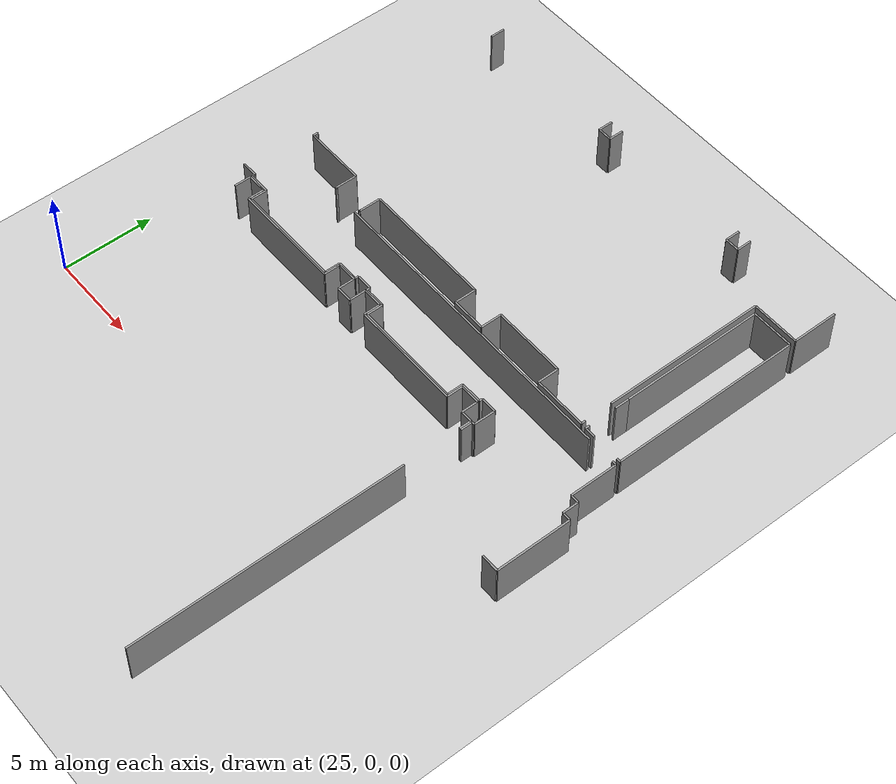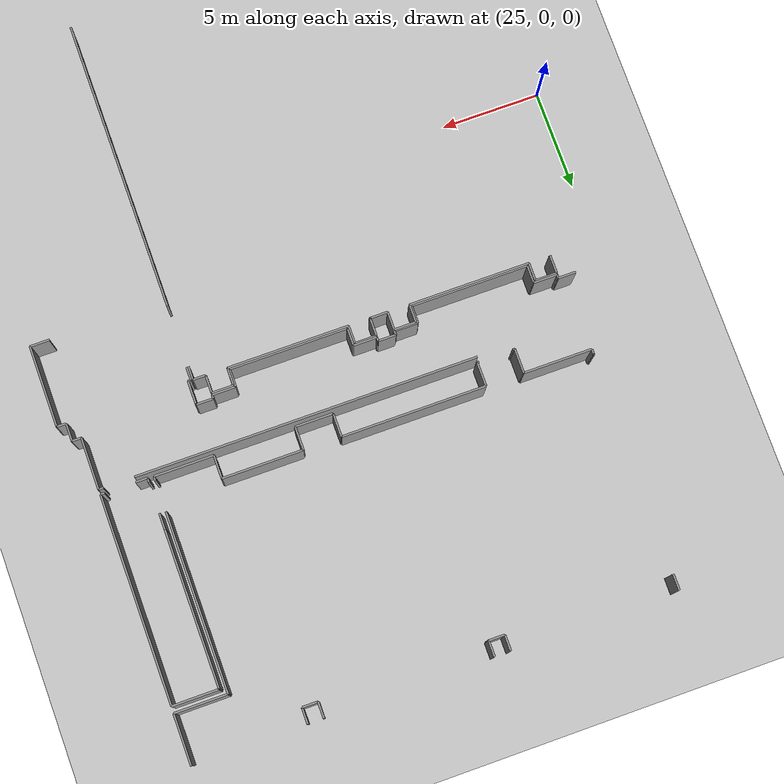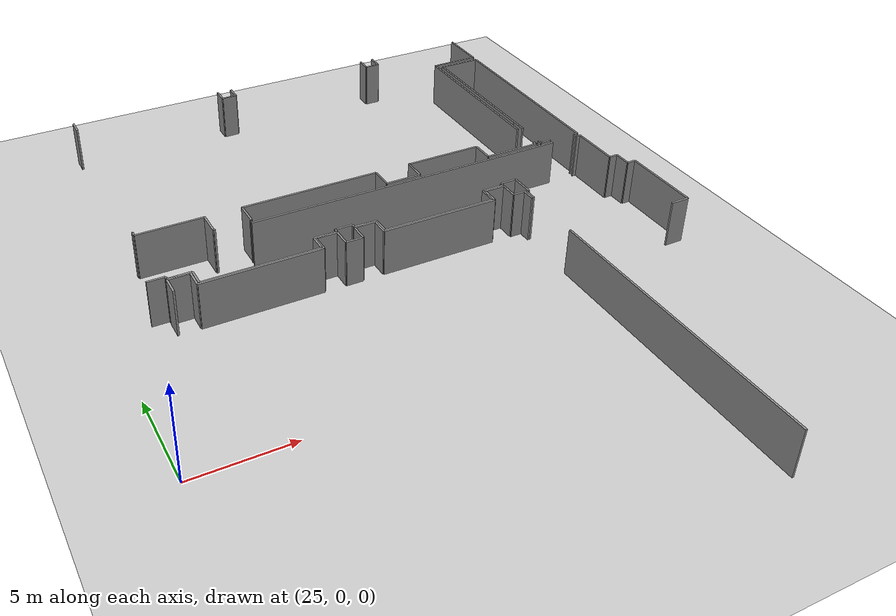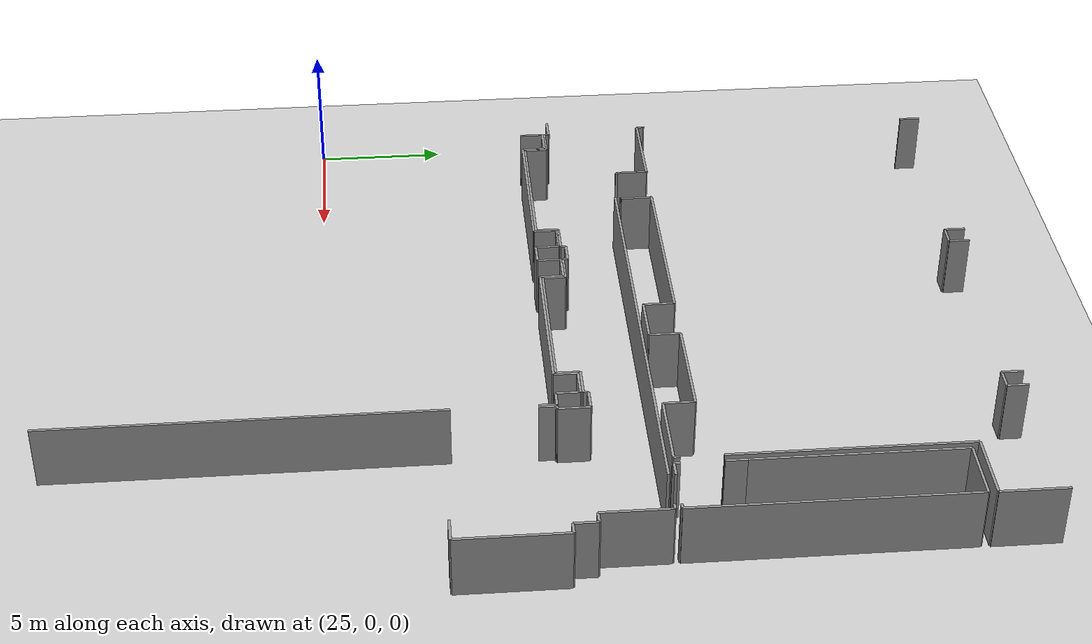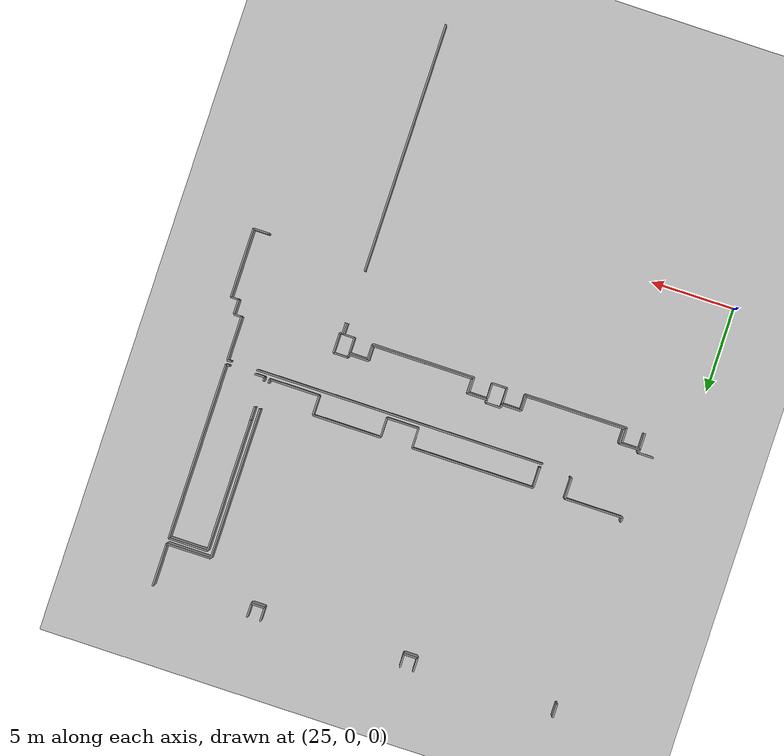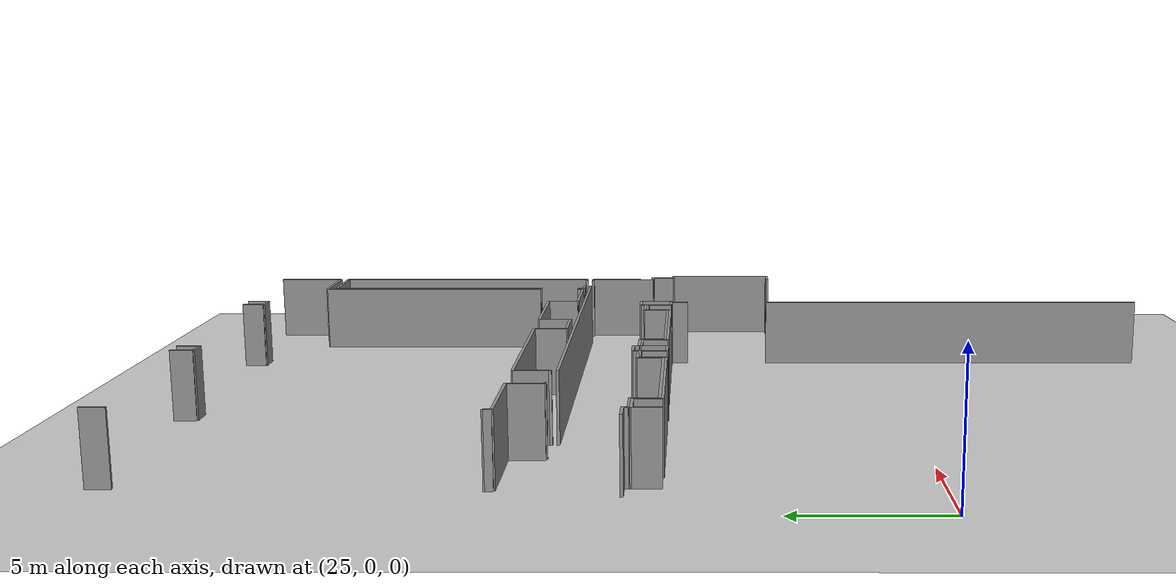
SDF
<sdf version="1.6">
 <world name="default">
  <model name="ground_plane">
   <static>1</static>
   <link name="link">
    <collision name="collision">
     <geometry><plane><normal>0 0 1</normal><size>100 100</size></plane></geometry>
     <surface><friction><ode><mu>100</mu><mu2>50</mu2></ode></friction></surface>
    </collision>
    <visual name="visual">
     <cast_shadows>0</cast_shadows>
     <geometry><plane><normal>0 0 1</normal><size>100 100</size></plane></geometry>
     <material>
      <script><uri>file://media/materials/scripts/gazebo.material</uri><name>Gazebo/Grey</name></script>
     </material>
    </visual>
   </link>
  </model>
  <model name="50045368">
   <static>1</static>
   <link name="Wall_276">
    <collision name="Wall_276_Collision">
     <geometry><box><size>0.822871664549 0.1 2.5</size></box></geometry>
     <pose>0.411435832274 0 1.25 0 0 0</pose>
    </collision>
    <visual name="Wall_276_Visual">
     <pose>0.411435832274 0 1.25 0 0 0</pose>
     <geometry><box><size>0.822871664549 0.1 2.5</size></box></geometry>
     <material>
      <script><uri>file://media/materials/scripts/gazebo.material</uri><name>Gazebo/Grey</name></script>
      <ambient>1 1 1 1</ambient>
     </material>
    </visual>
    <pose>80.4747141042 -0.826048284625 0 0 0 1.57079632679</pose>
   </link>
   <link name="Wall_277">
    <collision name="Wall_277_Collision">
     <geometry><box><size>0.810165184244 0.1 2.5</size></box></geometry>
     <pose>0.405082592122 0 1.25 0 0 0</pose>
    </collision>
    <visual name="Wall_277_Visual">
     <pose>0.405082592122 0 1.25 0 0 0</pose>
     <geometry><box><size>0.810165184244 0.1 2.5</size></box></geometry>
     <material>
      <script><uri>file://media/materials/scripts/gazebo.material</uri><name>Gazebo/Grey</name></script>
      <ambient>1 1 1 1</ambient>
     </material>
    </visual>
    <pose>88.9202033037 -0.00317662007624 0 0 0 -1.57079632679</pose>
   </link>
   <link name="Wall_278">
    <collision name="Wall_278_Collision">
     <geometry><box><size>0.806099110546 0.1 2.5</size></box></geometry>
     <pose>0.403049555273 0 1.25 0 0 0</pose>
    </collision>
    <visual name="Wall_278_Visual">
     <pose>0.403049555273 0 1.25 0 0 0</pose>
     <geometry><box><size>0.806099110546 0.1 2.5</size></box></geometry>
     <material>
      <script><uri>file://media/materials/scripts/gazebo.material</uri><name>Gazebo/Grey</name></script>
      <ambient>1 1 1 1</ambient>
     </material>
    </visual>
    <pose>88.9202033037 -0.81334180432 0 0 0 0.0</pose>
   </link>
   <link name="Wall_279">
    <collision name="Wall_279_Collision">
     <geometry><box><size>0.809783989835 0.1 2.5</size></box></geometry>
     <pose>0.404891994917 0 1.25 0 0 0</pose>
    </collision>
    <visual name="Wall_279_Visual">
     <pose>0.404891994917 0 1.25 0 0 0</pose>
     <geometry><box><size>0.809783989835 0.1 2.5</size></box></geometry>
     <material>
      <script><uri>file://media/materials/scripts/gazebo.material</uri><name>Gazebo/Grey</name></script>
      <ambient>1 1 1 1</ambient>
     </material>
    </visual>
    <pose>89.7263024142 -0.81334180432 0 0 0 1.57079632679</pose>
   </link>
   <link name="Wall_280">
    <collision name="Wall_280_Collision">
     <geometry><box><size>0.816899618806 0.1 2.5</size></box></geometry>
     <pose>0.408449809403 0 1.25 0 0 0</pose>
    </collision>
    <visual name="Wall_280_Visual">
     <pose>0.408449809403 0 1.25 0 0 0</pose>
     <geometry><box><size>0.816899618806 0.1 2.5</size></box></geometry>
     <material>
      <script><uri>file://media/materials/scripts/gazebo.material</uri><name>Gazebo/Grey</name></script>
      <ambient>1 1 1 1</ambient>
     </material>
    </visual>
    <pose>98.1796696315 -0.00355781448538 0 0 0 -1.57079632679</pose>
   </link>
   <link name="Wall_281">
    <collision name="Wall_281_Collision">
     <geometry><box><size>0.792249047014 0.1 2.5</size></box></geometry>
     <pose>0.396124523507 0 1.25 0 0 0</pose>
    </collision>
    <visual name="Wall_281_Visual">
     <pose>0.396124523507 0 1.25 0 0 0</pose>
     <geometry><box><size>0.792249047014 0.1 2.5</size></box></geometry>
     <material>
      <script><uri>file://media/materials/scripts/gazebo.material</uri><name>Gazebo/Grey</name></script>
      <ambient>1 1 1 1</ambient>
     </material>
    </visual>
    <pose>98.1796696315 -0.820457433291 0 0 0 0.0</pose>
   </link>
   <link name="Wall_282">
    <collision name="Wall_282_Collision">
     <geometry><box><size>0.814612452351 0.1 2.5</size></box></geometry>
     <pose>0.407306226175 0 1.25 0 0 0</pose>
    </collision>
    <visual name="Wall_282_Visual">
     <pose>0.407306226175 0 1.25 0 0 0</pose>
     <geometry><box><size>0.814612452351 0.1 2.5</size></box></geometry>
     <material>
      <script><uri>file://media/materials/scripts/gazebo.material</uri><name>Gazebo/Grey</name></script>
      <ambient>1 1 1 1</ambient>
     </material>
    </visual>
    <pose>98.9719186785 -0.820457433291 0 0 0 1.57079632679</pose>
   </link>
   <link name="Wall_283">
    <collision name="Wall_283_Collision">
     <geometry><box><size>2.54955527319 0.1 2.5</size></box></geometry>
     <pose>1.27477763659 0 1.25 0 0 0</pose>
    </collision>
    <visual name="Wall_283_Visual">
     <pose>1.27477763659 0 1.25 0 0 0</pose>
     <geometry><box><size>2.54955527319 0.1 2.5</size></box></geometry>
     <material>
      <script><uri>file://media/materials/scripts/gazebo.material</uri><name>Gazebo/Grey</name></script>
      <ambient>1 1 1 1</ambient>
     </material>
    </visual>
    <pose>104.685641677 -0.00584498094028 0 0 0 -1.57079632679</pose>
   </link>
   <link name="Wall_284">
    <collision name="Wall_284_Collision">
     <geometry><box><size>2.67280813215 0.1 2.5</size></box></geometry>
     <pose>1.33640406607 0 1.25 0 0 0</pose>
    </collision>
    <visual name="Wall_284_Visual">
     <pose>1.33640406607 0 1.25 0 0 0</pose>
     <geometry><box><size>2.67280813215 0.1 2.5</size></box></geometry>
     <material>
      <script><uri>file://media/materials/scripts/gazebo.material</uri><name>Gazebo/Grey</name></script>
      <ambient>1 1 1 1</ambient>
     </material>
    </visual>
    <pose>104.685641677 -2.55540025413 0 0 0 3.14159265359</pose>
   </link>
   <link name="Wall_285">
    <collision name="Wall_285_Collision">
     <geometry><box><size>9.04714104193 0.1 2.5</size></box></geometry>
     <pose>4.52357052097 0 1.25 0 0 0</pose>
    </collision>
    <visual name="Wall_285_Visual">
     <pose>4.52357052097 0 1.25 0 0 0</pose>
     <geometry><box><size>9.04714104193 0.1 2.5</size></box></geometry>
     <material>
      <script><uri>file://media/materials/scripts/gazebo.material</uri><name>Gazebo/Grey</name></script>
      <ambient>1 1 1 1</ambient>
     </material>
    </visual>
    <pose>102.012833545 -2.55540025413 0 0 0 -1.57079632679</pose>
   </link>
   <link name="Wall_286">
    <collision name="Wall_286_Collision">
     <geometry><box><size>0.228462515883 0.1 2.5</size></box></geometry>
     <pose>0.114231257942 0 1.25 0 0 0</pose>
    </collision>
    <visual name="Wall_286_Visual">
     <pose>0.114231257942 0 1.25 0 0 0</pose>
     <geometry><box><size>0.228462515883 0.1 2.5</size></box></geometry>
     <material>
      <script><uri>file://media/materials/scripts/gazebo.material</uri><name>Gazebo/Grey</name></script>
      <ambient>1 1 1 1</ambient>
     </material>
    </visual>
    <pose>102.012833545 -13.159974587 0 0 0 -1.57079632679</pose>
   </link>
   <link name="Wall_287">
    <collision name="Wall_287_Collision">
     <geometry><box><size>3.00317662008 0.1 2.5</size></box></geometry>
     <pose>1.50158831004 0 1.25 0 0 0</pose>
    </collision>
    <visual name="Wall_287_Visual">
     <pose>1.50158831004 0 1.25 0 0 0</pose>
     <geometry><box><size>3.00317662008 0.1 2.5</size></box></geometry>
     <material>
      <script><uri>file://media/materials/scripts/gazebo.material</uri><name>Gazebo/Grey</name></script>
      <ambient>1 1 1 1</ambient>
     </material>
    </visual>
    <pose>102.012833545 -13.3884371029 0 0 0 3.14159265359</pose>
   </link>
   <link name="Wall_288">
    <collision name="Wall_288_Collision">
     <geometry><box><size>1.17547649301 0.1 2.5</size></box></geometry>
     <pose>0.587738246506 0 1.25 0 0 0</pose>
    </collision>
    <visual name="Wall_288_Visual">
     <pose>0.587738246506 0 1.25 0 0 0</pose>
     <geometry><box><size>1.17547649301 0.1 2.5</size></box></geometry>
     <material>
      <script><uri>file://media/materials/scripts/gazebo.material</uri><name>Gazebo/Grey</name></script>
      <ambient>1 1 1 1</ambient>
     </material>
    </visual>
    <pose>99.009656925 -13.3884371029 0 0 0 1.57079632679</pose>
   </link>
   <link name="Wall_289">
    <collision name="Wall_289_Collision">
     <geometry><box><size>4.09529860229 0.1 2.5</size></box></geometry>
     <pose>2.04764930114 0 1.25 0 0 0</pose>
    </collision>
    <visual name="Wall_289_Visual">
     <pose>2.04764930114 0 1.25 0 0 0</pose>
     <geometry><box><size>4.09529860229 0.1 2.5</size></box></geometry>
     <material>
      <script><uri>file://media/materials/scripts/gazebo.material</uri><name>Gazebo/Grey</name></script>
      <ambient>1 1 1 1</ambient>
     </material>
    </visual>
    <pose>99.009656925 -12.2129606099 0 0 0 3.14159265359</pose>
   </link>
   <link name="Wall_290">
    <collision name="Wall_290_Collision">
     <geometry><box><size>1.18170266836 0.1 2.5</size></box></geometry>
     <pose>0.59085133418 0 1.25 0 0 0</pose>
    </collision>
    <visual name="Wall_290_Visual">
     <pose>0.59085133418 0 1.25 0 0 0</pose>
     <geometry><box><size>1.18170266836 0.1 2.5</size></box></geometry>
     <material>
      <script><uri>file://media/materials/scripts/gazebo.material</uri><name>Gazebo/Grey</name></script>
      <ambient>1 1 1 1</ambient>
     </material>
    </visual>
    <pose>94.9143583227 -12.2129606099 0 0 0 -1.57079632679</pose>
   </link>
   <link name="Wall_291">
    <collision name="Wall_291_Collision">
     <geometry><box><size>1.91562897078 0.1 2.5</size></box></geometry>
     <pose>0.957814485388 0 1.25 0 0 0</pose>
    </collision>
    <visual name="Wall_291_Visual">
     <pose>0.957814485388 0 1.25 0 0 0</pose>
     <geometry><box><size>1.91562897078 0.1 2.5</size></box></geometry>
     <material>
      <script><uri>file://media/materials/scripts/gazebo.material</uri><name>Gazebo/Grey</name></script>
      <ambient>1 1 1 1</ambient>
     </material>
    </visual>
    <pose>94.9143583227 -13.3946632783 0 0 0 3.14159265359</pose>
   </link>
   <link name="Wall_292">
    <collision name="Wall_292_Collision">
     <geometry><box><size>1.19212198221 0.1 2.5</size></box></geometry>
     <pose>0.596060991105 0 1.25 0 0 0</pose>
    </collision>
    <visual name="Wall_292_Visual">
     <pose>0.596060991105 0 1.25 0 0 0</pose>
     <geometry><box><size>1.19212198221 0.1 2.5</size></box></geometry>
     <material>
      <script><uri>file://media/materials/scripts/gazebo.material</uri><name>Gazebo/Grey</name></script>
      <ambient>1 1 1 1</ambient>
     </material>
    </visual>
    <pose>92.998729352 -13.3946632783 0 0 0 1.57079632679</pose>
   </link>
   <link name="Wall_293">
    <collision name="Wall_293_Collision">
     <geometry><box><size>7.33240152478 0.1 2.5</size></box></geometry>
     <pose>3.66620076239 0 1.25 0 0 0</pose>
    </collision>
    <visual name="Wall_293_Visual">
     <pose>3.66620076239 0 1.25 0 0 0</pose>
     <geometry><box><size>7.33240152478 0.1 2.5</size></box></geometry>
     <material>
      <script><uri>file://media/materials/scripts/gazebo.material</uri><name>Gazebo/Grey</name></script>
      <ambient>1 1 1 1</ambient>
     </material>
    </visual>
    <pose>92.998729352 -12.2025412961 0 0 0 3.14159265359</pose>
   </link>
   <link name="Wall_294">
    <collision name="Wall_294_Collision">
     <geometry><box><size>1.23036848793 0.1 2.5</size></box></geometry>
     <pose>0.615184243964 0 1.25 0 0 0</pose>
    </collision>
    <visual name="Wall_294_Visual">
     <pose>0.615184243964 0 1.25 0 0 0</pose>
     <geometry><box><size>1.23036848793 0.1 2.5</size></box></geometry>
     <material>
      <script><uri>file://media/materials/scripts/gazebo.material</uri><name>Gazebo/Grey</name></script>
      <ambient>1 1 1 1</ambient>
     </material>
    </visual>
    <pose>85.6663278272 -12.2025412961 0 0 0 -1.57079632679</pose>
   </link>
   <link name="Wall_295">
    <collision name="Wall_295_Collision">
     <geometry><box><size>0.0811944091487 0.1 2.5</size></box></geometry>
     <pose>0.0405972045743 0 1.25 0 0 0</pose>
    </collision>
    <visual name="Wall_295_Visual">
     <pose>0.0405972045743 0 1.25 0 0 0</pose>
     <geometry><box><size>0.0811944091487 0.1 2.5</size></box></geometry>
     <material>
      <script><uri>file://media/materials/scripts/gazebo.material</uri><name>Gazebo/Grey</name></script>
      <ambient>1 1 1 1</ambient>
     </material>
    </visual>
    <pose>85.6663278272 -13.432909784 0 0 0 3.14159265359</pose>
   </link>
   <link name="Wall_296">
    <collision name="Wall_296_Collision">
     <geometry><box><size>0.0955527318932 0.1 2.5</size></box></geometry>
     <pose>0.0477763659466 0 1.25 0 0 0</pose>
    </collision>
    <visual name="Wall_296_Visual">
     <pose>0.0477763659466 0 1.25 0 0 0</pose>
     <geometry><box><size>0.0955527318932 0.1 2.5</size></box></geometry>
     <material>
      <script><uri>file://media/materials/scripts/gazebo.material</uri><name>Gazebo/Grey</name></script>
      <ambient>1 1 1 1</ambient>
     </material>
    </visual>
    <pose>83.8401524778 -13.432909784 0 0 0 3.14159265359</pose>
   </link>
   <link name="Wall_297">
    <collision name="Wall_297_Collision">
     <geometry><box><size>1.24282083863 0.1 2.5</size></box></geometry>
     <pose>0.621410419314 0 1.25 0 0 0</pose>
    </collision>
    <visual name="Wall_297_Visual">
     <pose>0.621410419314 0 1.25 0 0 0</pose>
     <geometry><box><size>1.24282083863 0.1 2.5</size></box></geometry>
     <material>
      <script><uri>file://media/materials/scripts/gazebo.material</uri><name>Gazebo/Grey</name></script>
      <ambient>1 1 1 1</ambient>
     </material>
    </visual>
    <pose>83.7445997459 -13.432909784 0 0 0 1.57079632679</pose>
   </link>
   <link name="Wall_298">
    <collision name="Wall_298_Collision">
     <geometry><box><size>3.48284625159 0.1 2.5</size></box></geometry>
     <pose>1.74142312579 0 1.25 0 0 0</pose>
    </collision>
    <visual name="Wall_298_Visual">
     <pose>1.74142312579 0 1.25 0 0 0</pose>
     <geometry><box><size>3.48284625159 0.1 2.5</size></box></geometry>
     <material>
      <script><uri>file://media/materials/scripts/gazebo.material</uri><name>Gazebo/Grey</name></script>
      <ambient>1 1 1 1</ambient>
     </material>
    </visual>
    <pose>83.7445997459 -12.1900889454 0 0 0 3.14159265359</pose>
   </link>
   <link name="Wall_299">
    <collision name="Wall_299_Collision">
     <geometry><box><size>0.262134688691 0.1 2.5</size></box></geometry>
     <pose>0.131067344346 0 1.25 0 0 0</pose>
    </collision>
    <visual name="Wall_299_Visual">
     <pose>0.131067344346 0 1.25 0 0 0</pose>
     <geometry><box><size>0.262134688691 0.1 2.5</size></box></geometry>
     <material>
      <script><uri>file://media/materials/scripts/gazebo.material</uri><name>Gazebo/Grey</name></script>
      <ambient>1 1 1 1</ambient>
     </material>
    </visual>
    <pose>80.2617534943 -12.1900889454 0 0 0 1.57079632679</pose>
   </link>
   <link name="Wall_300">
    <collision name="Wall_300_Collision">
     <geometry><box><size>0.0360864040661 0.1 2.5</size></box></geometry>
     <pose>0.018043202033 0 1.25 0 0 0</pose>
    </collision>
    <visual name="Wall_300_Visual">
     <pose>0.018043202033 0 1.25 0 0 0</pose>
     <geometry><box><size>0.0360864040661 0.1 2.5</size></box></geometry>
     <material>
      <script><uri>file://media/materials/scripts/gazebo.material</uri><name>Gazebo/Grey</name></script>
      <ambient>1 1 1 1</ambient>
     </material>
    </visual>
    <pose>80.2617534943 -11.9279542567 0 0 0 3.14159265359</pose>
   </link>
   <link name="Wall_303">
    <collision name="Wall_303_Collision">
     <geometry><box><size>7.91728081321 0.1 2.5</size></box></geometry>
     <pose>3.95864040661 0 1.25 0 0 0</pose>
    </collision>
    <visual name="Wall_303_Visual">
     <pose>3.95864040661 0 1.25 0 0 0</pose>
     <geometry><box><size>7.91728081321 0.1 2.5</size></box></geometry>
     <material>
      <script><uri>file://media/materials/scripts/gazebo.material</uri><name>Gazebo/Grey</name></script>
      <ambient>1 1 1 1</ambient>
     </material>
    </visual>
    <pose>102.327445997 -10.8172808132 0 0 0 1.57079632679</pose>
   </link>
   <link name="Wall_304">
    <collision name="Wall_304_Collision">
     <geometry><box><size>2.34548919949 0.1 2.5</size></box></geometry>
     <pose>1.17274459975 0 1.25 0 0 0</pose>
    </collision>
    <visual name="Wall_304_Visual">
     <pose>1.17274459975 0 1.25 0 0 0</pose>
     <geometry><box><size>2.34548919949 0.1 2.5</size></box></geometry>
     <material>
      <script><uri>file://media/materials/scripts/gazebo.material</uri><name>Gazebo/Grey</name></script>
      <ambient>1 1 1 1</ambient>
     </material>
    </visual>
    <pose>102.327445997 -2.9 0 0 0 0.0</pose>
   </link>
   <link name="Wall_305">
    <collision name="Wall_305_Collision">
     <geometry><box><size>10.5179161372 0.1 2.5</size></box></geometry>
     <pose>5.25895806861 0 1.25 0 0 0</pose>
    </collision>
    <visual name="Wall_305_Visual">
     <pose>5.25895806861 0 1.25 0 0 0</pose>
     <geometry><box><size>10.5179161372 0.1 2.5</size></box></geometry>
     <material>
      <script><uri>file://media/materials/scripts/gazebo.material</uri><name>Gazebo/Grey</name></script>
      <ambient>1 1 1 1</ambient>
     </material>
    </visual>
    <pose>104.672935197 -2.9 0 0 0 -1.57079632679</pose>
   </link>
   <link name="Wall_306">
    <collision name="Wall_306_Collision">
     <geometry><box><size>0.210927573062 0.1 2.5</size></box></geometry>
     <pose>0.105463786531 0 1.25 0 0 0</pose>
    </collision>
    <visual name="Wall_306_Visual">
     <pose>0.105463786531 0 1.25 0 0 0</pose>
     <geometry><box><size>0.210927573062 0.1 2.5</size></box></geometry>
     <material>
      <script><uri>file://media/materials/scripts/gazebo.material</uri><name>Gazebo/Grey</name></script>
      <ambient>1 1 1 1</ambient>
     </material>
    </visual>
    <pose>104.672935197 -13.4179161372 0 0 0 3.14159265359</pose>
   </link>
   <link name="Wall_307">
    <collision name="Wall_307_Collision">
     <geometry><box><size>0.592757306226 0.1 2.5</size></box></geometry>
     <pose>0.296378653113 0 1.25 0 0 0</pose>
    </collision>
    <visual name="Wall_307_Visual">
     <pose>0.296378653113 0 1.25 0 0 0</pose>
     <geometry><box><size>0.592757306226 0.1 2.5</size></box></geometry>
     <material>
      <script><uri>file://media/materials/scripts/gazebo.material</uri><name>Gazebo/Grey</name></script>
      <ambient>1 1 1 1</ambient>
     </material>
    </visual>
    <pose>102.920711563 -13.4179161372 0 0 0 3.14159265359</pose>
   </link>
   <link name="Wall_308">
    <collision name="Wall_308_Collision">
     <geometry><box><size>0.233418043202 0.1 2.5</size></box></geometry>
     <pose>0.116709021601 0 1.25 0 0 0</pose>
    </collision>
    <visual name="Wall_308_Visual">
     <pose>0.116709021601 0 1.25 0 0 0</pose>
     <geometry><box><size>0.233418043202 0.1 2.5</size></box></geometry>
     <material>
      <script><uri>file://media/materials/scripts/gazebo.material</uri><name>Gazebo/Grey</name></script>
      <ambient>1 1 1 1</ambient>
     </material>
    </visual>
    <pose>102.327954257 -13.4179161372 0 0 0 1.57079632679</pose>
   </link>
   <link name="Wall_309">
    <collision name="Wall_309_Collision">
     <geometry><box><size>0.810038278895 0.1 2.5</size></box></geometry>
     <pose>0.405019139447 0 1.25 0 0 0</pose>
    </collision>
    <visual name="Wall_309_Visual">
     <pose>0.405019139447 0 1.25 0 0 0</pose>
     <geometry><box><size>0.810038278895 0.1 2.5</size></box></geometry>
     <material>
      <script><uri>file://media/materials/scripts/gazebo.material</uri><name>Gazebo/Grey</name></script>
      <ambient>1 1 1 1</ambient>
     </material>
    </visual>
    <pose>102.327954257 -11.6273189327 0 0 0 1.57142377769</pose>
   </link>
   <link name="Wall_319">
    <collision name="Wall_319_Collision">
     <geometry><box><size>17.323888183 0.1 2.5</size></box></geometry>
     <pose>8.66194409149 0 1.25 0 0 0</pose>
    </collision>
    <visual name="Wall_319_Visual">
     <pose>8.66194409149 0 1.25 0 0 0</pose>
     <geometry><box><size>17.323888183 0.1 2.5</size></box></geometry>
     <material>
      <script><uri>file://media/materials/scripts/gazebo.material</uri><name>Gazebo/Grey</name></script>
      <ambient>1 1 1 1</ambient>
     </material>
    </visual>
    <pose>85.5701397713 -13.6725540025 0 0 0 0.0</pose>
   </link>
   <link name="Wall_320">
    <collision name="Wall_320_Collision">
     <geometry><box><size>0.240152477764 0.1 2.5</size></box></geometry>
     <pose>0.120076238882 0 1.25 0 0 0</pose>
    </collision>
    <visual name="Wall_320_Visual">
     <pose>0.120076238882 0 1.25 0 0 0</pose>
     <geometry><box><size>0.240152477764 0.1 2.5</size></box></geometry>
     <material>
      <script><uri>file://media/materials/scripts/gazebo.material</uri><name>Gazebo/Grey</name></script>
      <ambient>1 1 1 1</ambient>
     </material>
    </visual>
    <pose>104.437865311 -13.6725540025 0 0 0 0.0</pose>
   </link>
   <link name="Wall_321">
    <collision name="Wall_321_Collision">
     <geometry><box><size>2.62350698856 0.1 2.5</size></box></geometry>
     <pose>1.31175349428 0 1.25 0 0 0</pose>
    </collision>
    <visual name="Wall_321_Visual">
     <pose>1.31175349428 0 1.25 0 0 0</pose>
     <geometry><box><size>2.62350698856 0.1 2.5</size></box></geometry>
     <material>
      <script><uri>file://media/materials/scripts/gazebo.material</uri><name>Gazebo/Grey</name></script>
      <ambient>1 1 1 1</ambient>
     </material>
    </visual>
    <pose>104.678017789 -13.6725540025 0 0 0 -1.57079632679</pose>
   </link>
   <link name="Wall_322">
    <collision name="Wall_322_Collision">
     <geometry><box><size>0.466327827192 0.1 2.5</size></box></geometry>
     <pose>0.233163913596 0 1.25 0 0 0</pose>
    </collision>
    <visual name="Wall_322_Visual">
     <pose>0.233163913596 0 1.25 0 0 0</pose>
     <geometry><box><size>0.466327827192 0.1 2.5</size></box></geometry>
     <material>
      <script><uri>file://media/materials/scripts/gazebo.material</uri><name>Gazebo/Grey</name></script>
      <ambient>1 1 1 1</ambient>
     </material>
    </visual>
    <pose>104.678017789 -16.2960609911 0 0 0 0.0</pose>
   </link>
   <link name="Wall_323">
    <collision name="Wall_323_Collision">
     <geometry><box><size>0.896188055909 0.1 2.5</size></box></geometry>
     <pose>0.448094027954 0 1.25 0 0 0</pose>
    </collision>
    <visual name="Wall_323_Visual">
     <pose>0.448094027954 0 1.25 0 0 0</pose>
     <geometry><box><size>0.896188055909 0.1 2.5</size></box></geometry>
     <material>
      <script><uri>file://media/materials/scripts/gazebo.material</uri><name>Gazebo/Grey</name></script>
      <ambient>1 1 1 1</ambient>
     </material>
    </visual>
    <pose>105.144345616 -16.2960609911 0 0 0 -1.57079632679</pose>
   </link>
   <link name="Wall_324">
    <collision name="Wall_324_Collision">
     <geometry><box><size>0.470139771283 0.1 2.5</size></box></geometry>
     <pose>0.235069885642 0 1.25 0 0 0</pose>
    </collision>
    <visual name="Wall_324_Visual">
     <pose>0.235069885642 0 1.25 0 0 0</pose>
     <geometry><box><size>0.470139771283 0.1 2.5</size></box></geometry>
     <material>
      <script><uri>file://media/materials/scripts/gazebo.material</uri><name>Gazebo/Grey</name></script>
      <ambient>1 1 1 1</ambient>
     </material>
    </visual>
    <pose>105.144345616 -17.192249047 0 0 0 0.0</pose>
   </link>
   <link name="Wall_325">
    <collision name="Wall_325_Collision">
     <geometry><box><size>4.13405336722 0.1 2.5</size></box></geometry>
     <pose>2.06702668361 0 1.25 0 0 0</pose>
    </collision>
    <visual name="Wall_325_Visual">
     <pose>2.06702668361 0 1.25 0 0 0</pose>
     <geometry><box><size>4.13405336722 0.1 2.5</size></box></geometry>
     <material>
      <script><uri>file://media/materials/scripts/gazebo.material</uri><name>Gazebo/Grey</name></script>
      <ambient>1 1 1 1</ambient>
     </material>
    </visual>
    <pose>105.614485388 -17.192249047 0 0 0 -1.57079632679</pose>
   </link>
   <link name="Wall_326">
    <collision name="Wall_326_Collision">
     <geometry><box><size>0.975857687421 0.1 2.5</size></box></geometry>
     <pose>0.48792884371 0 1.25 0 0 0</pose>
    </collision>
    <visual name="Wall_326_Visual">
     <pose>0.48792884371 0 1.25 0 0 0</pose>
     <geometry><box><size>0.975857687421 0.1 2.5</size></box></geometry>
     <material>
      <script><uri>file://media/materials/scripts/gazebo.material</uri><name>Gazebo/Grey</name></script>
      <ambient>1 1 1 1</ambient>
     </material>
    </visual>
    <pose>105.614485388 -21.3263024142 0 0 0 3.14159265359</pose>
   </link>
   <link name="Wall_337">
    <collision name="Wall_337_Collision">
     <geometry><box><size>0.661118170267 0.1 2.5</size></box></geometry>
     <pose>0.330559085133 0 1.25 0 0 0</pose>
    </collision>
    <visual name="Wall_337_Visual">
     <pose>0.330559085133 0 1.25 0 0 0</pose>
     <geometry><box><size>0.661118170267 0.1 2.5</size></box></geometry>
     <material>
      <script><uri>file://media/materials/scripts/gazebo.material</uri><name>Gazebo/Grey</name></script>
      <ambient>1 1 1 1</ambient>
     </material>
    </visual>
    <pose>98.8627700127 -17.8504447268 0 0 0 1.57079632679</pose>
   </link>
   <link name="Wall_338">
    <collision name="Wall_338_Collision">
     <geometry><box><size>0.150317662008 0.1 2.5</size></box></geometry>
     <pose>0.0751588310038 0 1.25 0 0 0</pose>
    </collision>
    <visual name="Wall_338_Visual">
     <pose>0.0751588310038 0 1.25 0 0 0</pose>
     <geometry><box><size>0.150317662008 0.1 2.5</size></box></geometry>
     <material>
      <script><uri>file://media/materials/scripts/gazebo.material</uri><name>Gazebo/Grey</name></script>
      <ambient>1 1 1 1</ambient>
     </material>
    </visual>
    <pose>98.8627700127 -17.1893265565 0 0 0 0.0</pose>
   </link>
   <link name="Wall_339">
    <collision name="Wall_339_Collision">
     <geometry><box><size>1.20152477764 0.1 2.5</size></box></geometry>
     <pose>0.600762388818 0 1.25 0 0 0</pose>
    </collision>
    <visual name="Wall_339_Visual">
     <pose>0.600762388818 0 1.25 0 0 0</pose>
     <geometry><box><size>1.20152477764 0.1 2.5</size></box></geometry>
     <material>
      <script><uri>file://media/materials/scripts/gazebo.material</uri><name>Gazebo/Grey</name></script>
      <ambient>1 1 1 1</ambient>
     </material>
    </visual>
    <pose>99.0130876747 -17.1893265565 0 0 0 1.57079632679</pose>
   </link>
   <link name="Wall_340">
    <collision name="Wall_340_Collision">
     <geometry><box><size>0.868487928844 0.1 2.5</size></box></geometry>
     <pose>0.434243964422 0 1.25 0 0 0</pose>
    </collision>
    <visual name="Wall_340_Visual">
     <pose>0.434243964422 0 1.25 0 0 0</pose>
     <geometry><box><size>0.868487928844 0.1 2.5</size></box></geometry>
     <material>
      <script><uri>file://media/materials/scripts/gazebo.material</uri><name>Gazebo/Grey</name></script>
      <ambient>1 1 1 1</ambient>
     </material>
    </visual>
    <pose>99.0130876747 -15.9878017789 0 0 0 3.14159265359</pose>
   </link>
   <link name="Wall_341">
    <collision name="Wall_341_Collision">
     <geometry><box><size>0.187801778907 0.1 2.5</size></box></geometry>
     <pose>0.0939008894536 0 1.25 0 0 0</pose>
    </collision>
    <visual name="Wall_341_Visual">
     <pose>0.0939008894536 0 1.25 0 0 0</pose>
     <geometry><box><size>0.187801778907 0.1 2.5</size></box></geometry>
     <material>
      <script><uri>file://media/materials/scripts/gazebo.material</uri><name>Gazebo/Grey</name></script>
      <ambient>1 1 1 1</ambient>
     </material>
    </visual>
    <pose>98.1445997459 -15.9878017789 0 0 0 -1.57079632679</pose>
   </link>
   <link name="Wall_342">
    <collision name="Wall_342_Collision">
     <geometry><box><size>1.19517153748 0.1 2.5</size></box></geometry>
     <pose>0.597585768742 0 1.25 0 0 0</pose>
    </collision>
    <visual name="Wall_342_Visual">
     <pose>0.597585768742 0 1.25 0 0 0</pose>
     <geometry><box><size>1.19517153748 0.1 2.5</size></box></geometry>
     <material>
      <script><uri>file://media/materials/scripts/gazebo.material</uri><name>Gazebo/Grey</name></script>
      <ambient>1 1 1 1</ambient>
     </material>
    </visual>
    <pose>98.1445997459 -16.1756035578 0 0 0 3.14159265359</pose>
   </link>
   <link name="Wall_343">
    <collision name="Wall_343_Collision">
     <geometry><box><size>0.903049555273 0.1 2.5</size></box></geometry>
     <pose>0.451524777637 0 1.25 0 0 0</pose>
    </collision>
    <visual name="Wall_343_Visual">
     <pose>0.451524777637 0 1.25 0 0 0</pose>
     <geometry><box><size>0.903049555273 0.1 2.5</size></box></geometry>
     <material>
      <script><uri>file://media/materials/scripts/gazebo.material</uri><name>Gazebo/Grey</name></script>
      <ambient>1 1 1 1</ambient>
     </material>
    </visual>
    <pose>96.9494282084 -16.1756035578 0 0 0 -1.57079632679</pose>
   </link>
   <link name="Wall_344">
    <collision name="Wall_344_Collision">
     <geometry><box><size>5.97725540025 0.1 2.5</size></box></geometry>
     <pose>2.98862770013 0 1.25 0 0 0</pose>
    </collision>
    <visual name="Wall_344_Visual">
     <pose>2.98862770013 0 1.25 0 0 0</pose>
     <geometry><box><size>5.97725540025 0.1 2.5</size></box></geometry>
     <material>
      <script><uri>file://media/materials/scripts/gazebo.material</uri><name>Gazebo/Grey</name></script>
      <ambient>1 1 1 1</ambient>
     </material>
    </visual>
    <pose>96.9494282084 -17.0786531131 0 0 0 3.14159265359</pose>
   </link>
   <link name="Wall_345">
    <collision name="Wall_345_Collision">
     <geometry><box><size>0.890470139771 0.1 2.5</size></box></geometry>
     <pose>0.445235069886 0 1.25 0 0 0</pose>
    </collision>
    <visual name="Wall_345_Visual">
     <pose>0.445235069886 0 1.25 0 0 0</pose>
     <geometry><box><size>0.890470139771 0.1 2.5</size></box></geometry>
     <material>
      <script><uri>file://media/materials/scripts/gazebo.material</uri><name>Gazebo/Grey</name></script>
      <ambient>1 1 1 1</ambient>
     </material>
    </visual>
    <pose>90.9721728081 -17.0786531131 0 0 0 1.57079632679</pose>
   </link>
   <link name="Wall_346">
    <collision name="Wall_346_Collision">
     <geometry><box><size>1.18792884371 0.1 2.5</size></box></geometry>
     <pose>0.593964421855 0 1.25 0 0 0</pose>
    </collision>
    <visual name="Wall_346_Visual">
     <pose>0.593964421855 0 1.25 0 0 0</pose>
     <geometry><box><size>1.18792884371 0.1 2.5</size></box></geometry>
     <material>
      <script><uri>file://media/materials/scripts/gazebo.material</uri><name>Gazebo/Grey</name></script>
      <ambient>1 1 1 1</ambient>
     </material>
    </visual>
    <pose>90.9721728081 -16.1881829733 0 0 0 3.14159265359</pose>
   </link>
   <link name="Wall_347">
    <collision name="Wall_347_Collision">
     <geometry><box><size>0.191105463787 0.1 2.5</size></box></geometry>
     <pose>0.0955527318933 0 1.25 0 0 0</pose>
    </collision>
    <visual name="Wall_347_Visual">
     <pose>0.0955527318933 0 1.25 0 0 0</pose>
     <geometry><box><size>0.191105463787 0.1 2.5</size></box></geometry>
     <material>
      <script><uri>file://media/materials/scripts/gazebo.material</uri><name>Gazebo/Grey</name></script>
      <ambient>1 1 1 1</ambient>
     </material>
    </visual>
    <pose>89.7842439644 -16.1881829733 0 0 0 1.57079632679</pose>
   </link>
   <link name="Wall_348">
    <collision name="Wall_348_Collision">
     <geometry><box><size>0.897331639136 0.1 2.5</size></box></geometry>
     <pose>0.448665819568 0 1.25 0 0 0</pose>
    </collision>
    <visual name="Wall_348_Visual">
     <pose>0.448665819568 0 1.25 0 0 0</pose>
     <geometry><box><size>0.897331639136 0.1 2.5</size></box></geometry>
     <material>
      <script><uri>file://media/materials/scripts/gazebo.material</uri><name>Gazebo/Grey</name></script>
      <ambient>1 1 1 1</ambient>
     </material>
    </visual>
    <pose>89.7842439644 -15.9970775095 0 0 0 3.14159265359</pose>
   </link>
   <link name="Wall_349">
    <collision name="Wall_349_Collision">
     <geometry><box><size>0.195171537484 0.1 2.5</size></box></geometry>
     <pose>0.0975857687421 0 1.25 0 0 0</pose>
    </collision>
    <visual name="Wall_349_Visual">
     <pose>0.0975857687421 0 1.25 0 0 0</pose>
     <geometry><box><size>0.195171537484 0.1 2.5</size></box></geometry>
     <material>
      <script><uri>file://media/materials/scripts/gazebo.material</uri><name>Gazebo/Grey</name></script>
      <ambient>1 1 1 1</ambient>
     </material>
    </visual>
    <pose>88.8869123253 -15.9970775095 0 0 0 -1.57079632679</pose>
   </link>
   <link name="Wall_350">
    <collision name="Wall_350_Collision">
     <geometry><box><size>1.19618805591 0.1 2.5</size></box></geometry>
     <pose>0.598094027954 0 1.25 0 0 0</pose>
    </collision>
    <visual name="Wall_350_Visual">
     <pose>0.598094027954 0 1.25 0 0 0</pose>
     <geometry><box><size>1.19618805591 0.1 2.5</size></box></geometry>
     <material>
      <script><uri>file://media/materials/scripts/gazebo.material</uri><name>Gazebo/Grey</name></script>
      <ambient>1 1 1 1</ambient>
     </material>
    </visual>
    <pose>88.8869123253 -16.192249047 0 0 0 3.14159265359</pose>
   </link>
   <link name="Wall_351">
    <collision name="Wall_351_Collision">
     <geometry><box><size>0.887547649301 0.1 2.5</size></box></geometry>
     <pose>0.443773824651 0 1.25 0 0 0</pose>
    </collision>
    <visual name="Wall_351_Visual">
     <pose>0.443773824651 0 1.25 0 0 0</pose>
     <geometry><box><size>0.887547649301 0.1 2.5</size></box></geometry>
     <material>
      <script><uri>file://media/materials/scripts/gazebo.material</uri><name>Gazebo/Grey</name></script>
      <ambient>1 1 1 1</ambient>
     </material>
    </visual>
    <pose>87.6907242694 -16.192249047 0 0 0 -1.57079632679</pose>
   </link>
   <link name="Wall_352">
    <collision name="Wall_352_Collision">
     <geometry><box><size>5.94409148666 0.1 2.5</size></box></geometry>
     <pose>2.97204574333 0 1.25 0 0 0</pose>
    </collision>
    <visual name="Wall_352_Visual">
     <pose>2.97204574333 0 1.25 0 0 0</pose>
     <geometry><box><size>5.94409148666 0.1 2.5</size></box></geometry>
     <material>
      <script><uri>file://media/materials/scripts/gazebo.material</uri><name>Gazebo/Grey</name></script>
      <ambient>1 1 1 1</ambient>
     </material>
    </visual>
    <pose>87.6907242694 -17.0797966963 0 0 0 3.14159265359</pose>
   </link>
   <link name="Wall_353">
    <collision name="Wall_353_Collision">
     <geometry><box><size>0.895806861499 0.1 2.5</size></box></geometry>
     <pose>0.44790343075 0 1.25 0 0 0</pose>
    </collision>
    <visual name="Wall_353_Visual">
     <pose>0.44790343075 0 1.25 0 0 0</pose>
     <geometry><box><size>0.895806861499 0.1 2.5</size></box></geometry>
     <material>
      <script><uri>file://media/materials/scripts/gazebo.material</uri><name>Gazebo/Grey</name></script>
      <ambient>1 1 1 1</ambient>
     </material>
    </visual>
    <pose>81.7466327827 -17.0797966963 0 0 0 1.57079632679</pose>
   </link>
   <link name="Wall_354">
    <collision name="Wall_354_Collision">
     <geometry><box><size>1.20038119441 0.1 2.5</size></box></geometry>
     <pose>0.600190597205 0 1.25 0 0 0</pose>
    </collision>
    <visual name="Wall_354_Visual">
     <pose>0.600190597205 0 1.25 0 0 0</pose>
     <geometry><box><size>1.20038119441 0.1 2.5</size></box></geometry>
     <material>
      <script><uri>file://media/materials/scripts/gazebo.material</uri><name>Gazebo/Grey</name></script>
      <ambient>1 1 1 1</ambient>
     </material>
    </visual>
    <pose>81.7466327827 -16.1839898348 0 0 0 3.14159265359</pose>
   </link>
   <link name="Wall_355">
    <collision name="Wall_355_Collision">
     <geometry><box><size>0.182846251588 0.1 2.5</size></box></geometry>
     <pose>0.0914231257942 0 1.25 0 0 0</pose>
    </collision>
    <visual name="Wall_355_Visual">
     <pose>0.0914231257942 0 1.25 0 0 0</pose>
     <geometry><box><size>0.182846251588 0.1 2.5</size></box></geometry>
     <material>
      <script><uri>file://media/materials/scripts/gazebo.material</uri><name>Gazebo/Grey</name></script>
      <ambient>1 1 1 1</ambient>
     </material>
    </visual>
    <pose>80.5462515883 -16.1839898348 0 0 0 1.57079632679</pose>
   </link>
   <link name="Wall_356">
    <collision name="Wall_356_Collision">
     <geometry><box><size>0.897331639136 0.1 2.5</size></box></geometry>
     <pose>0.448665819568 0 1.25 0 0 0</pose>
    </collision>
    <visual name="Wall_356_Visual">
     <pose>0.448665819568 0 1.25 0 0 0</pose>
     <geometry><box><size>0.897331639136 0.1 2.5</size></box></geometry>
     <material>
      <script><uri>file://media/materials/scripts/gazebo.material</uri><name>Gazebo/Grey</name></script>
      <ambient>1 1 1 1</ambient>
     </material>
    </visual>
    <pose>80.5462515883 -16.0011435832 0 0 0 3.14159265359</pose>
   </link>
   <link name="Wall_589">
    <collision name="Wall_589_Collision">
     <geometry><box><size>0.931003811944 0.1 2.5</size></box></geometry>
     <pose>0.465501905972 0 1.25 0 0 0</pose>
    </collision>
    <visual name="Wall_589_Visual">
     <pose>0.465501905972 0 1.25 0 0 0</pose>
     <geometry><box><size>0.931003811944 0.1 2.5</size></box></geometry>
     <material>
      <script><uri>file://media/materials/scripts/gazebo.material</uri><name>Gazebo/Grey</name></script>
      <ambient>1 1 1 1</ambient>
     </material>
    </visual>
    <pose>80.5336721728 -17.1880559085 0 0 0 1.57079632679</pose>
   </link>
   <link name="Wall_590">
    <collision name="Wall_590_Collision">
     <geometry><box><size>1.1 0.1 2.5</size></box></geometry>
     <pose>0.55 0 1.25 0 0 0</pose>
    </collision>
    <visual name="Wall_590_Visual">
     <pose>0.55 0 1.25 0 0 0</pose>
     <geometry><box><size>1.1 0.1 2.5</size></box></geometry>
     <material>
      <script><uri>file://media/materials/scripts/gazebo.material</uri><name>Gazebo/Grey</name></script>
      <ambient>1 1 1 1</ambient>
     </material>
    </visual>
    <pose>80.5336721728 -16.2570520966 0 0 0 0.0</pose>
   </link>
   <link name="Wall_591">
    <collision name="Wall_591_Collision">
     <geometry><box><size>0.907623888183 0.1 2.5</size></box></geometry>
     <pose>0.453811944091 0 1.25 0 0 0</pose>
    </collision>
    <visual name="Wall_591_Visual">
     <pose>0.453811944091 0 1.25 0 0 0</pose>
     <geometry><box><size>0.907623888183 0.1 2.5</size></box></geometry>
     <material>
      <script><uri>file://media/materials/scripts/gazebo.material</uri><name>Gazebo/Grey</name></script>
      <ambient>1 1 1 1</ambient>
     </material>
    </visual>
    <pose>81.6336721728 -16.2570520966 0 0 0 -1.57079632679</pose>
   </link>
   <link name="Wall_592">
    <collision name="Wall_592_Collision">
     <geometry><box><size>6.12820838628 0.1 2.5</size></box></geometry>
     <pose>3.06410419314 0 1.25 0 0 0</pose>
    </collision>
    <visual name="Wall_592_Visual">
     <pose>3.06410419314 0 1.25 0 0 0</pose>
     <geometry><box><size>6.12820838628 0.1 2.5</size></box></geometry>
     <material>
      <script><uri>file://media/materials/scripts/gazebo.material</uri><name>Gazebo/Grey</name></script>
      <ambient>1 1 1 1</ambient>
     </material>
    </visual>
    <pose>81.6336721728 -17.1646759848 0 0 0 0.0</pose>
   </link>
   <link name="Wall_593">
    <collision name="Wall_593_Collision">
     <geometry><box><size>0.906734434562 0.1 2.5</size></box></geometry>
     <pose>0.453367217281 0 1.25 0 0 0</pose>
    </collision>
    <visual name="Wall_593_Visual">
     <pose>0.453367217281 0 1.25 0 0 0</pose>
     <geometry><box><size>0.906734434562 0.1 2.5</size></box></geometry>
     <material>
      <script><uri>file://media/materials/scripts/gazebo.material</uri><name>Gazebo/Grey</name></script>
      <ambient>1 1 1 1</ambient>
     </material>
    </visual>
    <pose>87.7618805591 -17.1646759848 0 0 0 1.57079632679</pose>
   </link>
   <link name="Wall_594">
    <collision name="Wall_594_Collision">
     <geometry><box><size>1.11524777637 0.1 2.5</size></box></geometry>
     <pose>0.557623888183 0 1.25 0 0 0</pose>
    </collision>
    <visual name="Wall_594_Visual">
     <pose>0.557623888183 0 1.25 0 0 0</pose>
     <geometry><box><size>1.11524777637 0.1 2.5</size></box></geometry>
     <material>
      <script><uri>file://media/materials/scripts/gazebo.material</uri><name>Gazebo/Grey</name></script>
      <ambient>1 1 1 1</ambient>
     </material>
    </visual>
    <pose>87.7618805591 -16.2579415502 0 0 0 0.0</pose>
   </link>
   <link name="Wall_595">
    <collision name="Wall_595_Collision">
     <geometry><box><size>0.921092757306 0.1 2.5</size></box></geometry>
     <pose>0.460546378653 0 1.25 0 0 0</pose>
    </collision>
    <visual name="Wall_595_Visual">
     <pose>0.460546378653 0 1.25 0 0 0</pose>
     <geometry><box><size>0.921092757306 0.1 2.5</size></box></geometry>
     <material>
      <script><uri>file://media/materials/scripts/gazebo.material</uri><name>Gazebo/Grey</name></script>
      <ambient>1 1 1 1</ambient>
     </material>
    </visual>
    <pose>88.8771283355 -16.2579415502 0 0 0 -1.57079632679</pose>
   </link>
   <link name="Wall_596">
    <collision name="Wall_596_Collision">
     <geometry><box><size>0.899110546379 0.1 2.5</size></box></geometry>
     <pose>0.449555273189 0 1.25 0 0 0</pose>
    </collision>
    <visual name="Wall_596_Visual">
     <pose>0.449555273189 0 1.25 0 0 0</pose>
     <geometry><box><size>0.899110546379 0.1 2.5</size></box></geometry>
     <material>
      <script><uri>file://media/materials/scripts/gazebo.material</uri><name>Gazebo/Grey</name></script>
      <ambient>1 1 1 1</ambient>
     </material>
    </visual>
    <pose>88.8771283355 -17.1790343075 0 0 0 0.0</pose>
   </link>
   <link name="Wall_597">
    <collision name="Wall_597_Collision">
     <geometry><box><size>0.916899618806 0.1 2.5</size></box></geometry>
     <pose>0.458449809403 0 1.25 0 0 0</pose>
    </collision>
    <visual name="Wall_597_Visual">
     <pose>0.458449809403 0 1.25 0 0 0</pose>
     <geometry><box><size>0.916899618806 0.1 2.5</size></box></geometry>
     <material>
      <script><uri>file://media/materials/scripts/gazebo.material</uri><name>Gazebo/Grey</name></script>
      <ambient>1 1 1 1</ambient>
     </material>
    </visual>
    <pose>89.7762388818 -17.1790343075 0 0 0 1.57079632679</pose>
   </link>
   <link name="Wall_598">
    <collision name="Wall_598_Collision">
     <geometry><box><size>1.10317662008 0.1 2.5</size></box></geometry>
     <pose>0.551588310038 0 1.25 0 0 0</pose>
    </collision>
    <visual name="Wall_598_Visual">
     <pose>0.551588310038 0 1.25 0 0 0</pose>
     <geometry><box><size>1.10317662008 0.1 2.5</size></box></geometry>
     <material>
      <script><uri>file://media/materials/scripts/gazebo.material</uri><name>Gazebo/Grey</name></script>
      <ambient>1 1 1 1</ambient>
     </material>
    </visual>
    <pose>89.7762388818 -16.2621346887 0 0 0 0.0</pose>
   </link>
   <link name="Wall_599">
    <collision name="Wall_599_Collision">
     <geometry><box><size>0.905082592122 0.1 2.5</size></box></geometry>
     <pose>0.452541296061 0 1.25 0 0 0</pose>
    </collision>
    <visual name="Wall_599_Visual">
     <pose>0.452541296061 0 1.25 0 0 0</pose>
     <geometry><box><size>0.905082592122 0.1 2.5</size></box></geometry>
     <material>
      <script><uri>file://media/materials/scripts/gazebo.material</uri><name>Gazebo/Grey</name></script>
      <ambient>1 1 1 1</ambient>
     </material>
    </visual>
    <pose>90.8794155019 -16.2621346887 0 0 0 -1.57079632679</pose>
   </link>
   <link name="Wall_600">
    <collision name="Wall_600_Collision">
     <geometry><box><size>6.14891994917 0.1 2.5</size></box></geometry>
     <pose>3.07445997459 0 1.25 0 0 0</pose>
    </collision>
    <visual name="Wall_600_Visual">
     <pose>3.07445997459 0 1.25 0 0 0</pose>
     <geometry><box><size>6.14891994917 0.1 2.5</size></box></geometry>
     <material>
      <script><uri>file://media/materials/scripts/gazebo.material</uri><name>Gazebo/Grey</name></script>
      <ambient>1 1 1 1</ambient>
     </material>
    </visual>
    <pose>90.8794155019 -17.1672172808 0 0 0 0.0</pose>
   </link>
   <link name="Wall_601">
    <collision name="Wall_601_Collision">
     <geometry><box><size>0.900762388818 0.1 2.5</size></box></geometry>
     <pose>0.450381194409 0 1.25 0 0 0</pose>
    </collision>
    <visual name="Wall_601_Visual">
     <pose>0.450381194409 0 1.25 0 0 0</pose>
     <geometry><box><size>0.900762388818 0.1 2.5</size></box></geometry>
     <material>
      <script><uri>file://media/materials/scripts/gazebo.material</uri><name>Gazebo/Grey</name></script>
      <ambient>1 1 1 1</ambient>
     </material>
    </visual>
    <pose>97.0283354511 -17.1672172808 0 0 0 1.57079632679</pose>
   </link>
   <link name="Wall_602">
    <collision name="Wall_602_Collision">
     <geometry><box><size>1.10101651842 0.1 2.5</size></box></geometry>
     <pose>0.550508259212 0 1.25 0 0 0</pose>
    </collision>
    <visual name="Wall_602_Visual">
     <pose>0.550508259212 0 1.25 0 0 0</pose>
     <geometry><box><size>1.10101651842 0.1 2.5</size></box></geometry>
     <material>
      <script><uri>file://media/materials/scripts/gazebo.material</uri><name>Gazebo/Grey</name></script>
      <ambient>1 1 1 1</ambient>
     </material>
    </visual>
    <pose>97.0283354511 -16.266454892 0 0 0 0.0</pose>
   </link>
   <link name="Wall_603">
    <collision name="Wall_603_Collision">
     <geometry><box><size>0.91334180432 0.1 2.5</size></box></geometry>
     <pose>0.45667090216 0 1.25 0 0 0</pose>
    </collision>
    <visual name="Wall_603_Visual">
     <pose>0.45667090216 0 1.25 0 0 0</pose>
     <geometry><box><size>0.91334180432 0.1 2.5</size></box></geometry>
     <material>
      <script><uri>file://media/materials/scripts/gazebo.material</uri><name>Gazebo/Grey</name></script>
      <ambient>1 1 1 1</ambient>
     </material>
    </visual>
    <pose>98.1293519695 -16.266454892 0 0 0 -1.57079632679</pose>
   </link>
   <link name="Wall_604">
    <collision name="Wall_604_Collision">
     <geometry><box><size>0.640152477764 0.1 2.5</size></box></geometry>
     <pose>0.320076238882 0 1.25 0 0 0</pose>
    </collision>
    <visual name="Wall_604_Visual">
     <pose>0.320076238882 0 1.25 0 0 0</pose>
     <geometry><box><size>0.640152477764 0.1 2.5</size></box></geometry>
     <material>
      <script><uri>file://media/materials/scripts/gazebo.material</uri><name>Gazebo/Grey</name></script>
      <ambient>1 1 1 1</ambient>
     </material>
    </visual>
    <pose>98.1293519695 -17.1797966963 0 0 0 0.0</pose>
   </link>
   <link name="Wall_605">
    <collision name="Wall_605_Collision">
     <geometry><box><size>0.668233799238 0.1 2.5</size></box></geometry>
     <pose>0.334116899619 0 1.25 0 0 0</pose>
    </collision>
    <visual name="Wall_605_Visual">
     <pose>0.334116899619 0 1.25 0 0 0</pose>
     <geometry><box><size>0.668233799238 0.1 2.5</size></box></geometry>
     <material>
      <script><uri>file://media/materials/scripts/gazebo.material</uri><name>Gazebo/Grey</name></script>
      <ambient>1 1 1 1</ambient>
     </material>
    </visual>
    <pose>98.7695044473 -17.1797966963 0 0 0 -1.57079632679</pose>
   </link>
   <link name="Wall_606">
    <collision name="Wall_606_Collision">
     <geometry><box><size>14.915501906 0.1 2.5</size></box></geometry>
     <pose>7.45775095299 0 1.25 0 0 0</pose>
    </collision>
    <visual name="Wall_606_Visual">
     <pose>7.45775095299 0 1.25 0 0 0</pose>
     <geometry><box><size>14.915501906 0.1 2.5</size></box></geometry>
     <material>
      <script><uri>file://media/materials/scripts/gazebo.material</uri><name>Gazebo/Grey</name></script>
      <ambient>1 1 1 1</ambient>
     </material>
    </visual>
    <pose>98.7695044473 -21.015501906 0 0 0 -1.57079632679</pose>
   </link>
   <pose>-52.8 25.6383100381 0 0 0 0</pose>
  </model>
 </world>
</sdf>
